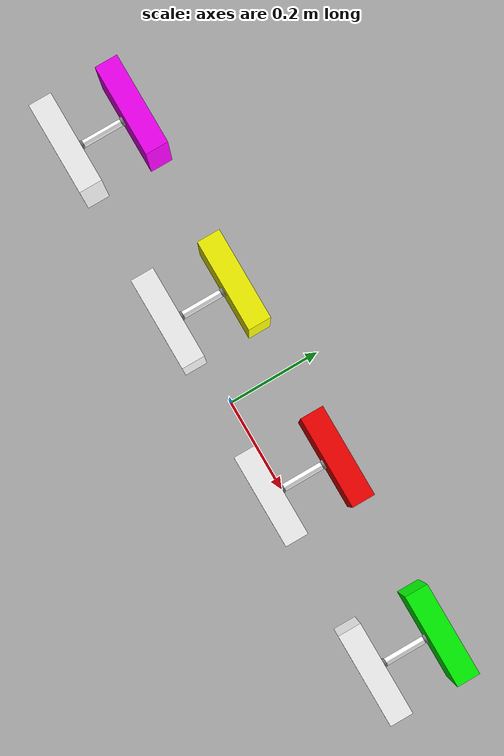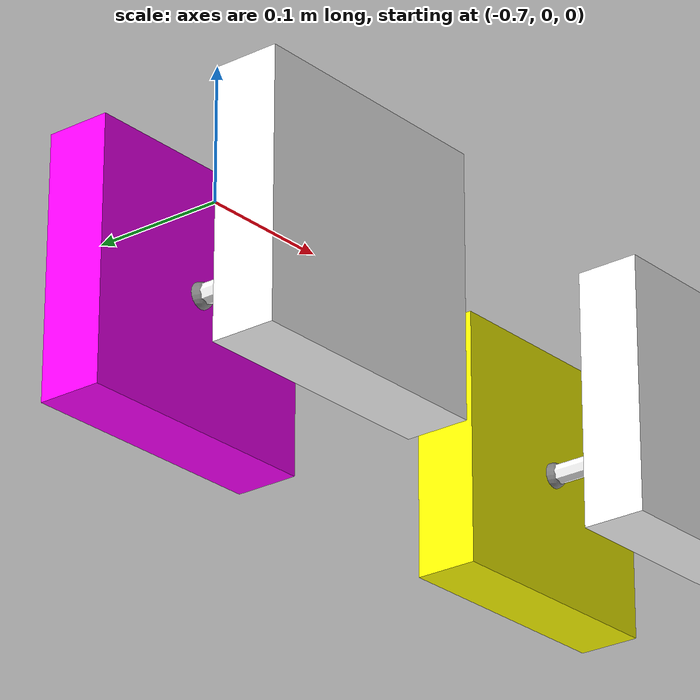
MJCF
<mujoco model="dissected-arm">

  <visual>
    <map force="0.1" zfar="30" />
    <rgba haze="0 0 0 1" />
    <global offwidth="1920" offheight="1080" elevation="-90" azimuth="90" />
    <quality shadowsize="2048" />
    <headlight ambient="0.3 0.3 0.3" diffuse="0.8 0.8 0.8" specular="0.4 0.4 0.4" />
  </visual>

  <asset>
    <material name="arm_mat" rgba="0.8 0.7 0.6 1" specular="0.1" shininess="0.1" reflectance="0" />
    <material name="tendon_mat" rgba="1 1 1 1" specular="0" shininess="0" reflectance="0"
      emission="0.2" />
  </asset>

  <default>
    <joint stiffness="0" damping="1" />
    <muscle ctrllimited="true" ctrlrange="0 1" vmax="1.2" fpmax="1.4" timeconst=".01 .04" />
    <geom material="arm_mat" />
    <tendon material="tendon_mat" limited="false" width="0.008" />
  </default>

  <worldbody>

    <!-- DELTOID -->
    <body pos="-.6 -.025 0">
      <site name="deltoid_origin" pos="0 .025 0" size="0.01" />
      <geom name="deltoid_plate_static" type="box" size=".1 .025 0.1" density="5000" rgba="1 1 1 1" />
      <body pos="0 .15 0">
        <site name="deltoid_insert" pos="0 -.025 0" size="0.01" />
        <geom name="deltoid_plate_movable" type="box" size=".1 .025 0.1" density="5000"
          rgba="1 0 1 1" />
        <joint name="deltoid_joint"
          pos="0 .55 0"
          type="slide"
          axis="0 1 0"
          damping="0"
          limited="true"
          range="0 .5" />
      </body>
    </body>

    <!-- LATISSIMUS -->
    <body pos="-.2 -.025 0">
      <site name="latissimus_origin" pos="0 .025 0" size="0.01" />
      <geom name="latissimus_plate_static" type="box" size=".1 .025 0.1" density="5000"
        rgba="1 1 1 1" />
      <body pos="0 .15 0">
        <site name="latissimus_insert" pos="0 -.025 0" size="0.01" />
        <geom name="latissimus_plate_movable" type="box" size=".1 .025 0.1" density="5000"
          rgba="1 1 0 1" />
        <joint name="latissimus_joint"
          pos="0 .55 0"
          type="slide"
          axis="0 1 0"
          damping="0"
          limited="true"
          range="0 .5" />
      </body>
    </body>

    <!-- BICEPS -->
    <body pos=".2 -.025 0">
      <site name="biceps_origin" pos="0 .025 0" size="0.01" />
      <geom name="biceps_plate_static" type="box" size=".1 .025 0.1" density="5000" rgba="1 1 1 1" />
      <body pos="0 .15 0">
        <site name="biceps_insert" pos="0 -.025 0" size="0.01" />
        <geom name="biceps_plate_movable" type="box" size=".1 .025 0.1" density="5000"
          rgba="1 0 0 1" />
        <joint name="biceps_joint"
          pos="0 .55 0"
          type="slide"
          axis="0 1 0"
          damping="0"
          limited="true"
          range="0 .5" />
      </body>
    </body>

    <!-- TRICEPS -->
    <body pos=".6 -.025 0">
      <site name="triceps_origin" pos="0 .025 0" size="0.01" />
      <geom name="triceps_plate_static" type="box" size=".1 .025 0.1" density="5000" rgba="1 1 1 1" />
      <body pos="0 .15 0">
        <site name="triceps_insert" pos="0 -.025 0" size="0.01" />
        <geom name="triceps_plate_movable" type="box" size=".1 .025 0.1" density="5000"
          rgba="0 1 0 1" />
        <joint name="triceps_joint"
          pos="0 .55 0"
          type="slide"
          axis="0 1 0"
          damping="0"
          limited="true"
          range="0 .5" />
      </body>
    </body>
  </worldbody>

  <tendon>
    <spatial name="deltoid_tendon" rgba="1 0 1 1">
      <site site="deltoid_origin" />
      <site site="deltoid_insert" />
    </spatial>
    <spatial name="latissimus_tendon" rgba="1 1 0 1">
      <site site="latissimus_origin" />
      <site site="latissimus_insert" />
    </spatial>
    <spatial name="biceps_tendon" rgba="1 0 0 1">
      <site site="biceps_origin" />
      <site site="biceps_insert" />
    </spatial>
    <spatial name="triceps_tendon" rgba="0 1 0 1">
      <site site="triceps_origin" />
      <site site="triceps_insert" />
    </spatial>
  </tendon>

  <actuator>
    <velocity name="deltoid_stretcher" joint="deltoid_joint" kv="1000" ctrlrange="-1 1" />
    <velocity name="latissimus_stretcher" joint="latissimus_joint" kv="1000" ctrlrange="-1 1" />
    <velocity name="biceps_stretcher" joint="biceps_joint" kv="1000" ctrlrange="-1 1" />
    <velocity name="triceps_stretcher" joint="triceps_joint" kv="1000" ctrlrange="-1 1" />
    <muscle name="deltoid" tendon="deltoid_tendon" force="100" />
    <muscle name="latissimus" tendon="latissimus_tendon" force="100" />
    <muscle name="biceps" tendon="biceps_tendon" force="100" />
    <muscle name="triceps" tendon="triceps_tendon" force="100" />
  </actuator>

  <sensor>
    <actuatorpos name="deltoid_length" actuator="deltoid" />
    <actuatorpos name="latissimus_length" actuator="latissimus" />
    <actuatorpos name="biceps_length" actuator="biceps" />
    <actuatorpos name="triceps_length" actuator="triceps" />
    <actuatorvel name="deltoid_velocity" actuator="deltoid" />
    <actuatorvel name="latissimus_velocity" actuator="latissimus" />
    <actuatorvel name="biceps_velocity" actuator="biceps" />
    <actuatorvel name="triceps_velocity" actuator="triceps" />
    <actuatorfrc name="deltoid_force" actuator="deltoid" />
    <actuatorfrc name="latissimus_force" actuator="latissimus" />
    <actuatorfrc name="biceps_force" actuator="biceps" />
    <actuatorfrc name="triceps_force" actuator="triceps" />
  </sensor>
</mujoco>
